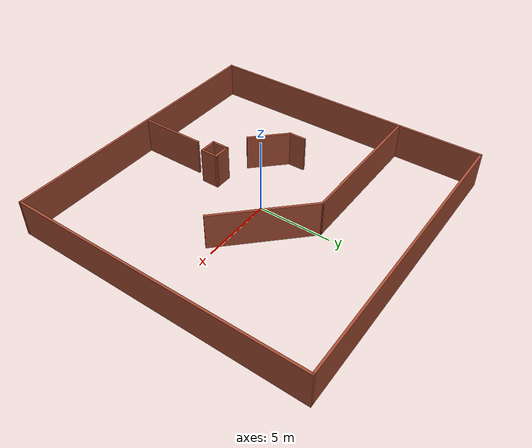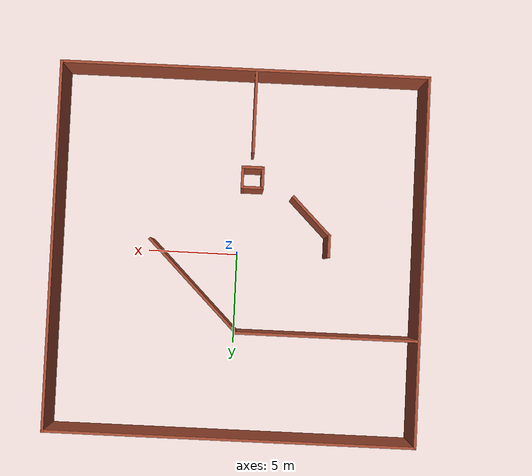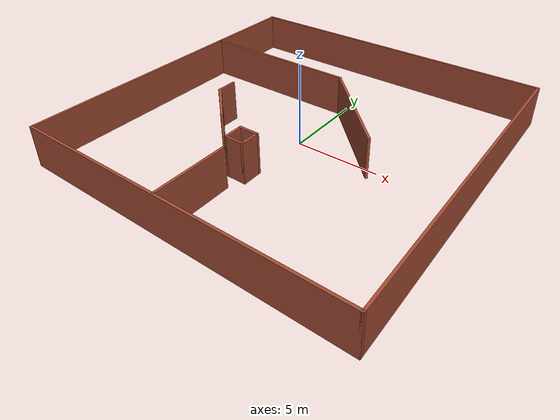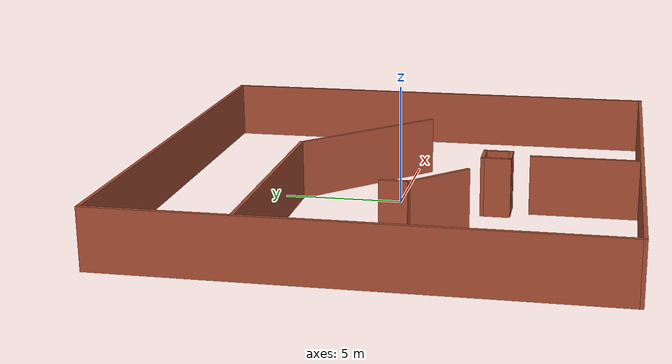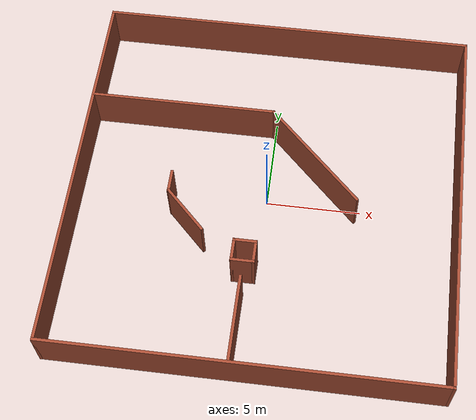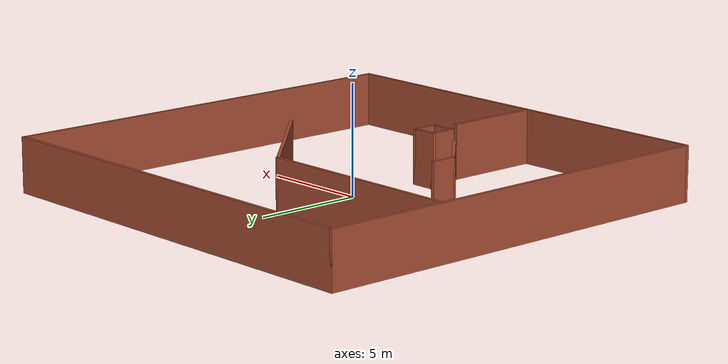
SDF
<?xml version='1.0'?>
<sdf version='1.7'>
  <model name='flocking'>
    <pose>0 0 0 0 -0 0</pose>
    <link name='Wall_0'>
      <collision name='Wall_0_Collision'>
        <geometry>
          <box>
            <size>20.15 0.15 2.5</size>
          </box>
        </geometry>
        <pose>0 0 1.25 0 -0 0</pose>
      </collision>
      <visual name='Wall_0_Visual'>
        <pose>0 0 1.25 0 -0 0</pose>
        <geometry>
          <box>
            <size>20.15 0.15 2.5</size>
          </box>
        </geometry>
        <material>
          <script>
            <uri>file://media/materials/scripts/gazebo.material</uri>
            <name>Gazebo/Bricks</name>
          </script>
          <ambient>1 1 1 1</ambient>
        </material>
        <meta>
          <layer>0</layer>
        </meta>
      </visual>
      <pose>-10 0 0 0 -0 1.5708</pose>
    </link>
    <link name='Wall_11'>
      <collision name='Wall_11_Collision'>
        <geometry>
          <box>
            <size>1.25 0.15 2.5</size>
          </box>
        </geometry>
        <pose>0 0 1.25 0 -0 0</pose>
      </collision>
      <visual name='Wall_11_Visual'>
        <pose>0 0 1.25 0 -0 0</pose>
        <geometry>
          <box>
            <size>1.25 0.15 2.5</size>
          </box>
        </geometry>
        <material>
          <script>
            <uri>file://media/materials/scripts/gazebo.material</uri>
            <name>Gazebo/Bricks</name>
          </script>
          <ambient>1 1 1 1</ambient>
        </material>
        <meta>
          <layer>0</layer>
        </meta>
      </visual>
      <pose>-1.20606 -4.13758 0 0 -0 -1.5708</pose>
    </link>
    <link name='Wall_12'>
      <collision name='Wall_12_Collision'>
        <geometry>
          <box>
            <size>1.25 0.15 2.5</size>
          </box>
        </geometry>
        <pose>0 0 1.25 0 -0 0</pose>
      </collision>
      <visual name='Wall_12_Visual'>
        <pose>0 0 1.25 0 -0 0</pose>
        <geometry>
          <box>
            <size>1.25 0.15 2.5</size>
          </box>
        </geometry>
        <material>
          <script>
            <uri>file://media/materials/scripts/gazebo.material</uri>
            <name>Gazebo/Bricks</name>
          </script>
          <ambient>1 1 1 1</ambient>
        </material>
        <meta>
          <layer>0</layer>
        </meta>
      </visual>
      <pose>-0.656062 -4.68758 0 0 -0 0</pose>
    </link>
    <link name='Wall_13'>
      <collision name='Wall_13_Collision'>
        <geometry>
          <box>
            <size>1.25 0.15 2.5</size>
          </box>
        </geometry>
        <pose>0 0 1.25 0 -0 0</pose>
      </collision>
      <visual name='Wall_13_Visual'>
        <pose>0 0 1.25 0 -0 0</pose>
        <geometry>
          <box>
            <size>1.25 0.15 2.5</size>
          </box>
        </geometry>
        <material>
          <script>
            <uri>file://media/materials/scripts/gazebo.material</uri>
            <name>Gazebo/Bricks</name>
          </script>
          <ambient>1 1 1 1</ambient>
        </material>
        <meta>
          <layer>0</layer>
        </meta>
      </visual>
      <pose>-0.106062 -4.13758 0 0 -0 1.5708</pose>
    </link>
    <link name='Wall_14'>
      <collision name='Wall_14_Collision'>
        <geometry>
          <box>
            <size>1.25 0.15 2.5</size>
          </box>
        </geometry>
        <pose>0 0 1.25 0 -0 0</pose>
      </collision>
      <visual name='Wall_14_Visual'>
        <pose>0 0 1.25 0 -0 0</pose>
        <geometry>
          <box>
            <size>1.25 0.15 2.5</size>
          </box>
        </geometry>
        <material>
          <script>
            <uri>file://media/materials/scripts/gazebo.material</uri>
            <name>Gazebo/Bricks</name>
          </script>
          <ambient>1 1 1 1</ambient>
        </material>
        <meta>
          <layer>0</layer>
        </meta>
      </visual>
      <pose>-0.656062 -3.58758 0 0 -0 3.14159</pose>
    </link>
    <link name='Wall_16'>
      <collision name='Wall_16_Collision'>
        <geometry>
          <box>
            <size>1.25 0.15 2.5</size>
          </box>
        </geometry>
        <pose>0 0 1.25 0 -0 0</pose>
      </collision>
      <visual name='Wall_16_Visual'>
        <pose>0 0 1.25 0 -0 0</pose>
        <geometry>
          <box>
            <size>1.25 0.15 2.5</size>
          </box>
        </geometry>
        <material>
          <script>
            <uri>file://media/materials/scripts/gazebo.material</uri>
            <name>Gazebo/Bricks</name>
          </script>
          <ambient>1 1 1 1</ambient>
        </material>
        <meta>
          <layer>0</layer>
        </meta>
      </visual>
      <pose>-4.94358 -0.614164 0 0 -0 -1.5708</pose>
    </link>
    <link name='Wall_17'>
      <collision name='Wall_17_Collision'>
        <geometry>
          <box>
            <size>3 0.15 2.5</size>
          </box>
        </geometry>
        <pose>0 0 1.25 0 -0 0</pose>
      </collision>
      <visual name='Wall_17_Visual'>
        <pose>0 0 1.25 0 -0 0</pose>
        <geometry>
          <box>
            <size>3 0.15 2.5</size>
          </box>
        </geometry>
        <material>
          <script>
            <uri>file://media/materials/scripts/gazebo.material</uri>
            <name>Gazebo/Bricks</name>
          </script>
          <ambient>1 1 1 1</ambient>
        </material>
        <meta>
          <layer>0</layer>
        </meta>
      </visual>
      <pose>-3.93595 -2.17179 0 0 -0 -0.785398</pose>
    </link>
    <link name='Wall_19'>
      <collision name='Wall_19_Collision'>
        <geometry>
          <box>
            <size>4.5 0.15 2.5</size>
          </box>
        </geometry>
        <pose>0 0 1.25 0 -0 0</pose>
      </collision>
      <visual name='Wall_19_Visual'>
        <pose>0 0 1.25 0 -0 0</pose>
        <geometry>
          <box>
            <size>4.5 0.15 2.5</size>
          </box>
        </geometry>
        <material>
          <script>
            <uri>file://media/materials/scripts/gazebo.material</uri>
            <name>Gazebo/Bricks</name>
          </script>
          <ambient>1 1 1 1</ambient>
        </material>
        <meta>
          <layer>0</layer>
        </meta>
      </visual>
      <pose>-0.624982 -7.73411 0 0 -0 -1.5708</pose>
    </link>
    <link name='Wall_2'>
      <collision name='Wall_2_Collision'>
        <geometry>
          <box>
            <size>20.15 0.15 2.5</size>
          </box>
        </geometry>
        <pose>0 0 1.25 0 -0 0</pose>
      </collision>
      <visual name='Wall_2_Visual'>
        <pose>0 0 1.25 0 -0 0</pose>
        <geometry>
          <box>
            <size>20.15 0.15 2.5</size>
          </box>
        </geometry>
        <material>
          <script>
            <uri>file://media/materials/scripts/gazebo.material</uri>
            <name>Gazebo/Bricks</name>
          </script>
          <ambient>1 1 1 1</ambient>
        </material>
        <meta>
          <layer>0</layer>
        </meta>
      </visual>
      <pose>0 10 0 0 -0 0</pose>
    </link>
    <link name='Wall_4'>
      <collision name='Wall_4_Collision'>
        <geometry>
          <box>
            <size>20.15 0.15 2.5</size>
          </box>
        </geometry>
        <pose>0 0 1.25 0 -0 0</pose>
      </collision>
      <visual name='Wall_4_Visual'>
        <pose>0 0 1.25 0 -0 0</pose>
        <geometry>
          <box>
            <size>20.15 0.15 2.5</size>
          </box>
        </geometry>
        <material>
          <script>
            <uri>file://media/materials/scripts/gazebo.material</uri>
            <name>Gazebo/Bricks</name>
          </script>
          <ambient>1 1 1 1</ambient>
        </material>
        <meta>
          <layer>0</layer>
        </meta>
      </visual>
      <pose>10 0 0 0 -0 -1.5708</pose>
    </link>
    <link name='Wall_6'>
      <collision name='Wall_6_Collision'>
        <geometry>
          <box>
            <size>20.15 0.15 2.5</size>
          </box>
        </geometry>
        <pose>0 0 1.25 0 -0 0</pose>
      </collision>
      <visual name='Wall_6_Visual'>
        <pose>0 0 1.25 0 -0 0</pose>
        <geometry>
          <box>
            <size>20.15 0.15 2.5</size>
          </box>
        </geometry>
        <material>
          <script>
            <uri>file://media/materials/scripts/gazebo.material</uri>
            <name>Gazebo/Bricks</name>
          </script>
          <ambient>1 1 1 1</ambient>
        </material>
        <meta>
          <layer>0</layer>
        </meta>
      </visual>
      <pose>0 -10 0 0 -0 0</pose>
    </link>
    <link name='Wall_8'>
      <collision name='Wall_8_Collision'>
        <geometry>
          <box>
            <size>10 0.15 2.5</size>
          </box>
        </geometry>
        <pose>0 0 1.25 0 -0 0</pose>
      </collision>
      <visual name='Wall_8_Visual'>
        <pose>0 0 1.25 0 -0 0</pose>
        <geometry>
          <box>
            <size>10 0.15 2.5</size>
          </box>
        </geometry>
        <material>
          <script>
            <uri>file://media/materials/scripts/gazebo.material</uri>
            <name>Gazebo/Bricks</name>
          </script>
          <ambient>1 1 1 1</ambient>
        </material>
        <meta>
          <layer>0</layer>
        </meta>
      </visual>
      <pose>-5.05913 4.28608 0 0 -0 0</pose>
    </link>
    <link name='Wall_9'>
      <collision name='Wall_9_Collision'>
        <geometry>
          <box>
            <size>7 0.15 2.5</size>
          </box>
        </geometry>
        <pose>0 0 1.25 0 -0 0</pose>
      </collision>
      <visual name='Wall_9_Visual'>
        <pose>0 0 1.25 0 -0 0</pose>
        <geometry>
          <box>
            <size>7 0.15 2.5</size>
          </box>
        </geometry>
        <material>
          <script>
            <uri>file://media/materials/scripts/gazebo.material</uri>
            <name>Gazebo/Bricks</name>
          </script>
          <ambient>1 1 1 1</ambient>
        </material>
        <meta>
          <layer>0</layer>
        </meta>
      </visual>
      <pose>2.28771 1.86424 0 0 -0 -0.785398</pose>
    </link>
    <static>1</static>
  </model>
</sdf>
